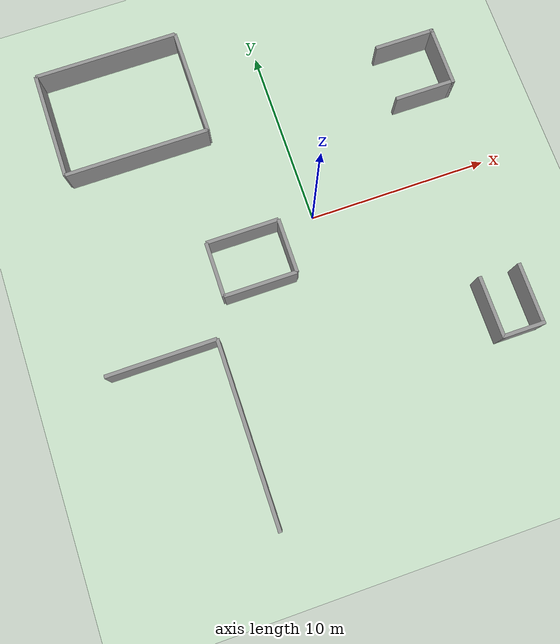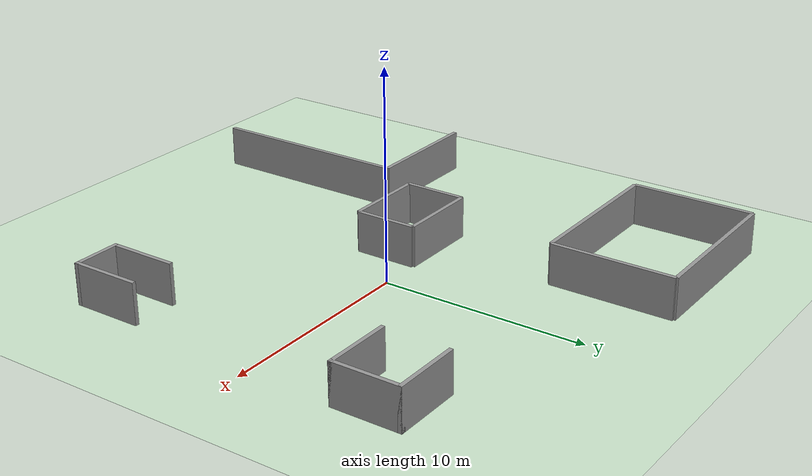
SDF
<?xml version="1.0" ?>
<sdf version="1.9">
  <world name="floor_1_world">
    <physics name="1ms" type="ignored">
        <max_step_size>0.001</max_step_size>
        <real_time_factor>1.0</real_time_factor>
    </physics>
    <plugin filename="gz-sim-physics-system" name="gz::sim::systems::Physics"/>
    <plugin filename="gz-sim-user-commands-system" name="gz::sim::systems::UserCommands"/>
    <plugin filename="gz-sim-scene-broadcaster-system" name="gz::sim::systems::SceneBroadcaster"/>

    <light type="directional" name="sun">
      <cast_shadows>true</cast_shadows>
      <pose>0 0 10 0 0 0</pose>
      <diffuse>0.8 0.8 0.8 1</diffuse>
      <specular>0.2 0.2 0.2 1</specular>
      <direction>-0.5 0.1 -0.9</direction>
    </light>

    <model name="ground_plane">
      <static>true</static>
      <link name="link">
        <collision name="collision">
          <geometry><plane><normal>0 0 1</normal><size>100 100</size></plane></geometry>
        </collision>
        <visual name="visual">
          <geometry><plane><normal>0 0 1</normal><size>100 100</size></plane></geometry>
          <material>
            <ambient>0.8 0.9 0.8 1</ambient>
            <diffuse>0.8 0.9 0.8 1</diffuse>
          </material>
        </visual>
      </link>
    </model>

    <model name="building_1f">
      <static>true</static>

      <link name="elevator_back_wall">
        <pose>8.0 -9.6 1.0 0 0 0</pose>
        <collision name="collision">
          <geometry><box><size>2.4 0.2 2.0</size></box></geometry>
        </collision>
        <visual name="visual">
          <geometry><box><size>2.4 0.2 2.0</size></box></geometry>
          <material>
            <ambient>0.5 0.5 0.5 1</ambient>
            <diffuse>0.6 0.6 0.6 1</diffuse>
          </material>
        </visual>
      </link>
      <link name="elevator_left_wall">
        <pose>6.9 -8.0 1.0 0 0 0</pose>
        <collision name="collision">
          <geometry><box><size>0.2 3.4 2.0</size></box></geometry>
        </collision>
        <visual name="visual">
          <geometry><box><size>0.2 3.4 2.0</size></box></geometry>
          <material>
            <ambient>0.5 0.5 0.5 1</ambient>
            <diffuse>0.6 0.6 0.6 1</diffuse>
          </material>
        </visual>
      </link>
      <link name="elevator_right_wall">
        <pose>9.1 -8.0 1.0 0 0 0</pose>
        <collision name="collision">
          <geometry><box><size>0.2 3.4 2.0</size></box></geometry>
        </collision>
        <visual name="visual">
          <geometry><box><size>0.2 3.4 2.0</size></box></geometry>
          <material>
            <ambient>0.5 0.5 0.5 1</ambient>
            <diffuse>0.6 0.6 0.6 1</diffuse>
          </material>
        </visual>
      </link>
      <link name="stairs_back_wall">
        <pose>9.6 6.0 1.0 0 0 0</pose>
        <collision name="collision">
          <geometry><box><size>0.2 3.4 2.0</size></box></geometry>
        </collision>
        <visual name="visual">
          <geometry><box><size>0.2 3.4 2.0</size></box></geometry>
          <material>
            <ambient>0.5 0.5 0.5 1</ambient>
            <diffuse>0.6 0.6 0.6 1</diffuse>
          </material>
        </visual>
      </link>
      <link name="stairs_top_wall">
        <pose>8.0 7.6 1.0 0 0 0</pose>
        <collision name="collision">
          <geometry><box><size>3.4 0.2 2.0</size></box></geometry>
        </collision>
        <visual name="visual">
          <geometry><box><size>3.4 0.2 2.0</size></box></geometry>
          <material>
            <ambient>0.5 0.5 0.5 1</ambient>
            <diffuse>0.6 0.6 0.6 1</diffuse>
          </material>
        </visual>
      </link>
      <link name="stairs_bottom_wall">
        <pose>8.0 4.4 1.0 0 0 0</pose>
        <collision name="collision">
          <geometry><box><size>3.4 0.2 2.0</size></box></geometry>
        </collision>
        <visual name="visual">
          <geometry><box><size>3.4 0.2 2.0</size></box></geometry>
          <material>
            <ambient>0.5 0.5 0.5 1</ambient>
            <diffuse>0.6 0.6 0.6 1</diffuse>
          </material>
        </visual>
      </link>
      <link name="bottom_left_horizontal">
        <pose>-10.0 -5.0 1.0 0 0 0</pose>
        <collision name="collision">
          <geometry><box><size>6.0 0.2 2.0</size></box></geometry>
        </collision>
        <visual name="visual">
          <geometry><box><size>6.0 0.2 2.0</size></box></geometry>
          <material>
            <ambient>0.5 0.5 0.5 1</ambient>
            <diffuse>0.6 0.6 0.6 1</diffuse>
          </material>
        </visual>
      </link>
      <link name="bottom_left_vertical">
        <pose>-7.0 -10.0 1.0 0 0 0</pose>
        <collision name="collision">
          <geometry><box><size>0.2 10.0 2.0</size></box></geometry>
        </collision>
        <visual name="visual">
          <geometry><box><size>0.2 10.0 2.0</size></box></geometry>
          <material>
            <ambient>0.5 0.5 0.5 1</ambient>
            <diffuse>0.6 0.6 0.6 1</diffuse>
          </material>
        </visual>
      </link>
      <link name="top_left_box_top">
        <pose>-8.0 12.0 1.0 0 0 0</pose>
        <collision name="collision">
          <geometry><box><size>8.0 0.2 2.0</size></box></geometry>
        </collision>
        <visual name="visual">
          <geometry><box><size>8.0 0.2 2.0</size></box></geometry>
          <material>
            <ambient>0.5 0.5 0.5 1</ambient>
            <diffuse>0.6 0.6 0.6 1</diffuse>
          </material>
        </visual>
      </link>
      <link name="top_left_box_bottom">
        <pose>-8.0 6.0 1.0 0 0 0</pose>
        <collision name="collision">
          <geometry><box><size>8.0 0.2 2.0</size></box></geometry>
        </collision>
        <visual name="visual">
          <geometry><box><size>8.0 0.2 2.0</size></box></geometry>
          <material>
            <ambient>0.5 0.5 0.5 1</ambient>
            <diffuse>0.6 0.6 0.6 1</diffuse>
          </material>
        </visual>
      </link>
      <link name="top_left_box_left">
        <pose>-12.0 9.0 1.0 0 0 0</pose>
        <collision name="collision">
          <geometry><box><size>0.2 6.0 2.0</size></box></geometry>
        </collision>
        <visual name="visual">
          <geometry><box><size>0.2 6.0 2.0</size></box></geometry>
          <material>
            <ambient>0.5 0.5 0.5 1</ambient>
            <diffuse>0.6 0.6 0.6 1</diffuse>
          </material>
        </visual>
      </link>
      <link name="top_left_box_right">
        <pose>-4.0 9.0 1.0 0 0 0</pose>
        <collision name="collision">
          <geometry><box><size>0.2 6.0 2.0</size></box></geometry>
        </collision>
        <visual name="visual">
          <geometry><box><size>0.2 6.0 2.0</size></box></geometry>
          <material>
            <ambient>0.5 0.5 0.5 1</ambient>
            <diffuse>0.6 0.6 0.6 1</diffuse>
          </material>
        </visual>
      </link>
      <link name="mid_box_top">
        <pose>-4.0 0.0 1.0 0 0 0</pose>
        <collision name="collision">
          <geometry><box><size>4.0 0.2 2.0</size></box></geometry>
        </collision>
        <visual name="visual">
          <geometry><box><size>4.0 0.2 2.0</size></box></geometry>
          <material>
            <ambient>0.5 0.5 0.5 1</ambient>
            <diffuse>0.6 0.6 0.6 1</diffuse>
          </material>
        </visual>
      </link>
      <link name="mid_box_bottom">
        <pose>-4.0 -3.0 1.0 0 0 0</pose>
        <collision name="collision">
          <geometry><box><size>4.0 0.2 2.0</size></box></geometry>
        </collision>
        <visual name="visual">
          <geometry><box><size>4.0 0.2 2.0</size></box></geometry>
          <material>
            <ambient>0.5 0.5 0.5 1</ambient>
            <diffuse>0.6 0.6 0.6 1</diffuse>
          </material>
        </visual>
      </link>
      <link name="mid_box_left">
        <pose>-6.0 -1.5 1.0 0 0 0</pose>
        <collision name="collision">
          <geometry><box><size>0.2 3.0 2.0</size></box></geometry>
        </collision>
        <visual name="visual">
          <geometry><box><size>0.2 3.0 2.0</size></box></geometry>
          <material>
            <ambient>0.5 0.5 0.5 1</ambient>
            <diffuse>0.6 0.6 0.6 1</diffuse>
          </material>
        </visual>
      </link>
      <link name="mid_box_right">
        <pose>-2.0 -1.5 1.0 0 0 0</pose>
        <collision name="collision">
          <geometry><box><size>0.2 3.0 2.0</size></box></geometry>
        </collision>
        <visual name="visual">
          <geometry><box><size>0.2 3.0 2.0</size></box></geometry>
          <material>
            <ambient>0.5 0.5 0.5 1</ambient>
            <diffuse>0.6 0.6 0.6 1</diffuse>
          </material>
        </visual>
      </link>
    </model>
  </world>
</sdf>
